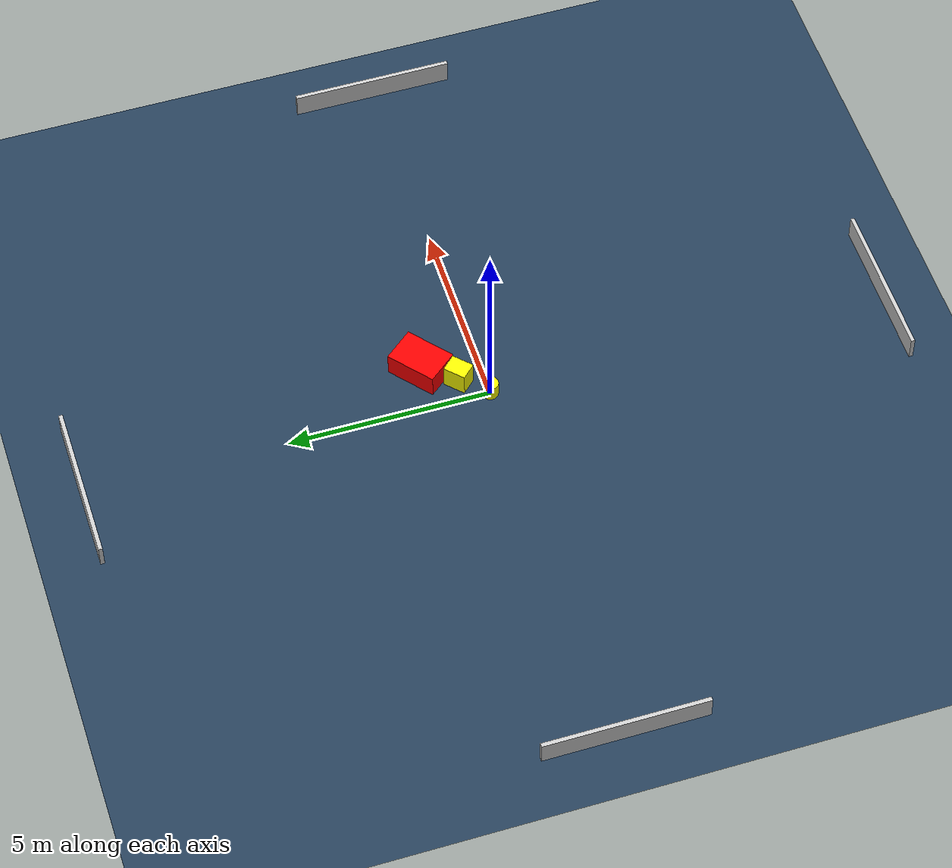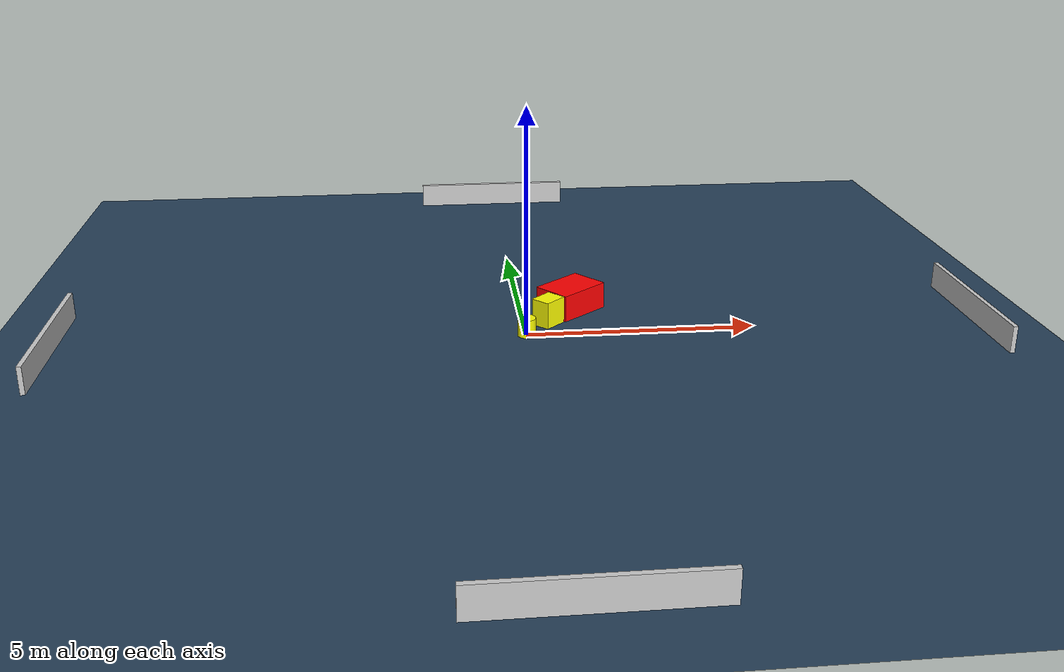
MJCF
<?xml version="1.0" ?>
<mujoco model="generated_environment">
  <option timestep="0.01" integrator="RK4" cone="elliptic"/>
  <default>
    <geom density="1"/>
  </default>
  <asset>
    <texture builtin="gradient" height="3072" name="skybox" rgb1="0.3 0.5 0.7" rgb2="0 0 0" type="skybox" width="512"/>
    <texture builtin="checker" height="300" name="groundplane" rgb1="0.2 0.3 0.4" rgb2="0.1 0.2 0.3" type="2d" width="300"/>
    <material name="groundplane" reflectance="0.2" texrepeat="5 5" texture="groundplane"/>
  </asset>
  <worldbody>
    <light dir="0 0 -1" directional="true" pos="0 0 1.5"/>
    <geom condim="3" friction="0.5 0.005 0.001" material="groundplane" name="floor" pos="0 0 0" size="0 0 0.05" type="plane"/>
    <body name="walls">
      <geom name="wall_1" condim="4" pos="-10.0 0.0 0.3" rgba="0.800000011920929 0.800000011920929 0.800000011920929 1.0" size="0.05 2.0 0.3" type="box"/>
      <geom name="wall_2" condim="4" pos="10.0 0.0 0.3" rgba="0.800000011920929 0.800000011920929 0.800000011920929 1.0" size="0.05 2.0 0.3" type="box"/>
      <geom name="wall_3" condim="4" pos="0.0 -10.0 0.3" rgba="0.800000011920929 0.800000011920929 0.800000011920929 1.0" size="2.0 0.05 0.3" type="box"/>
      <geom name="wall_4" condim="4" pos="0.0 10.0 0.3" rgba="0.800000011920929 0.800000011920929 0.800000011920929 1.0" size="2.0 0.05 0.3" type="box"/>
    </body>
    <body name="robot">
      <joint name="joint_x" type="slide" pos="0 0 0" axis="1 0 0"/>
      <joint name="joint_y" type="slide" pos="0 0 0" axis="0 1 0"/>
      <geom name="robot" type="cylinder" pos="0.0 0.0 0.2" size="0.2 0.2 0.0" mass="5.0" friction="1.0 0.005 0.0001" condim="4" rgba="1.0 1.0 0.0 1.0"/>
    </body>
    <body name="obstacle_1_movable">
      <geom name="obstacle_1_movable" condim="4" pos="0.541636793948413 0.6223958999721533 0.3" euler="0 0 223.6239824041836" friction="0.0 0.005 0.001" rgba="1.0 1.0 0.0 1.0" size="0.2819937773710311 0.2231071674219235 0.3" type="box" mass="0.1"/>
      <joint type="free"/>
    </body>
    <body name="obstacle_2_static">
      <geom name="obstacle_2_static" condim="4" pos="1.141811562065445 1.3917668029107606 0.3" euler="0 0 219.67513637152868" friction="0.0 0.005 0.001" rgba="1.0 0.0 0.0 1.0" size="0.6418381835331033 0.4469565697398304 0.3" type="box"/>
    </body>
  </worldbody>
  <actuator>
    <motor name="actuator_x" joint="joint_x" gear="1" ctrlrange="-1 1"/>
    <motor name="actuator_y" joint="joint_y" gear="1" ctrlrange="-1 1"/>
  </actuator>
</mujoco>
